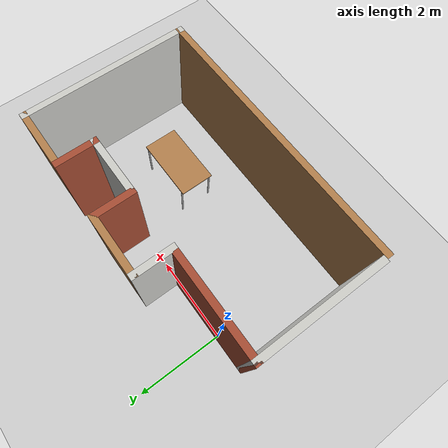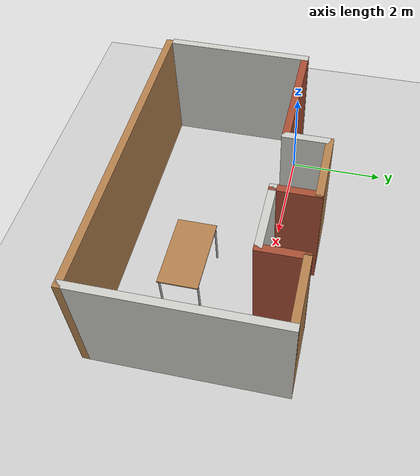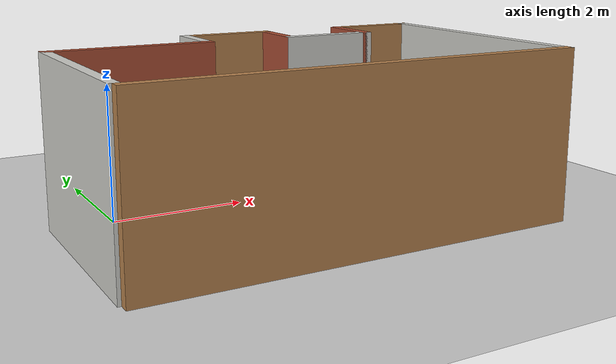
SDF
<sdf version="1.6">
 <world name="default">
  <light name="sun" type="directional">
   <pose>0 0 10 0 -0 0</pose>
   <diffuse>0.8 0.8 0.8 1</diffuse>
   <specular>0.2 0.2 0.2 1</specular>
   <attenuation>
    <range>1000</range>
    <constant>0.9</constant>
    <linear>0.01</linear>
    <quadratic>0.001</quadratic>
   </attenuation>
   <direction>-0.5 0.1 -0.9</direction>
  </light>
  <model name="ground_plane">
   <static>1</static>
   <link name="link">
    <collision name="collision">
     <geometry><plane><normal>0 0 1</normal><size>100 100</size></plane></geometry>
     <surface>
      <contact><collide_bitmask>65535</collide_bitmask></contact>
      <friction><ode><mu>100</mu><mu2>50</mu2></ode></friction>
     </surface>
    </collision>
    <visual name="visual">
     <cast_shadows>0</cast_shadows>
     <geometry><plane><normal>0 0 1</normal><size>100 100</size></plane></geometry>
     <material>
      <script><uri>file://media/materials/scripts/gazebo.material</uri><name>Gazebo/Grey</name></script>
     </material>
    </visual>
   </link>
  </model>
  <gravity>0 0 -9.8</gravity>
  <magnetic_field>6e-06 2.3e-05 -4.2e-05</magnetic_field>
  <atmosphere type="adiabatic"/>
  <physics name="default_physics" default="0" type="ode">
   <max_step_size>0.001</max_step_size>
   <real_time_factor>1</real_time_factor>
   <real_time_update_rate>1000</real_time_update_rate>
  </physics>
  <scene><ambient>0.4 0.4 0.4 1</ambient><background>0.7 0.7 0.7 1</background><shadows>1</shadows></scene>
  <audio><device>default</device></audio>
  <spherical_coordinates>
   <surface_model>EARTH_WGS84</surface_model>
   <latitude_deg>0</latitude_deg>
   <longitude_deg>0</longitude_deg>
   <elevation>0</elevation>
   <heading_deg>0</heading_deg>
  </spherical_coordinates>
  <model name="my_new_world2">
   <pose>2.38333 -1.08113 0 0 -0 0</pose>
   <link name="Wall_0">
    <collision name="Wall_0_Collision">
     <geometry><box><size>3 0.15 2.5</size></box></geometry>
     <pose>0 0 1.25 0 -0 0</pose>
    </collision>
    <visual name="Wall_0_Visual">
     <pose>0 0 1.25 0 -0 0</pose>
     <geometry><box><size>3 0.15 2.5</size></box></geometry>
     <material>
      <script><uri>file://media/materials/scripts/gazebo.material</uri><name>Gazebo/CeilingTiled</name></script>
      <ambient>1 1 1 1</ambient>
     </material>
     <meta><layer>0</layer></meta>
    </visual>
    <pose>-3.2 -0.35 0 0 -0 1.5708</pose>
   </link>
   <link name="Wall_1">
    <collision name="Wall_1_Collision">
     <geometry><box><size>2.5 0.15 2.5</size></box></geometry>
     <pose>0 0 1.25 0 -0 0</pose>
    </collision>
    <visual name="Wall_1_Visual">
     <pose>0 0 1.25 0 -0 0</pose>
     <geometry><box><size>2.5 0.15 2.5</size></box></geometry>
     <material>
      <script><uri>file://media/materials/scripts/gazebo.material</uri><name>Gazebo/Bricks</name></script>
      <ambient>1 1 1 1</ambient>
     </material>
     <meta><layer>0</layer></meta>
    </visual>
    <pose>-2.025 1.075 0 0 -0 0</pose>
   </link>
   <link name="Wall_2">
    <collision name="Wall_2_Collision">
     <geometry><box><size>1 0.15 2.5</size></box></geometry>
     <pose>0 0 1.25 0 -0 0</pose>
    </collision>
    <visual name="Wall_2_Visual">
     <pose>0 0 1.25 0 -0 0</pose>
     <geometry><box><size>1 0.15 2.5</size></box></geometry>
     <material>
      <script><uri>file://media/materials/scripts/gazebo.material</uri><name>Gazebo/CeilingTiled</name></script>
      <ambient>1 1 1 1</ambient>
     </material>
     <meta><layer>0</layer></meta>
    </visual>
    <pose>-0.85 1.5 0 0 -0 1.5708</pose>
   </link>
   <link name="Wall_3">
    <collision name="Wall_3_Collision">
     <geometry><box><size>1.5 0.15 2.5</size></box></geometry>
     <pose>0 0 1.25 0 -0 0</pose>
    </collision>
    <visual name="Wall_3_Visual">
     <pose>0 0 1.25 0 -0 0</pose>
     <geometry><box><size>1.5 0.15 2.5</size></box></geometry>
     <material>
      <script><uri>file://media/materials/scripts/gazebo.material</uri><name>Gazebo/Wood</name></script>
      <ambient>1 1 1 1</ambient>
     </material>
     <meta><layer>0</layer></meta>
    </visual>
    <pose>-0.175 1.925 0 0 -0 0</pose>
   </link>
   <link name="Wall_4">
    <collision name="Wall_4_Collision">
     <geometry><box><size>1 0.15 2.5</size></box></geometry>
     <pose>0 0 1.25 0 -0 0</pose>
    </collision>
    <visual name="Wall_4_Visual">
     <pose>0 0 1.25 0 -0 0</pose>
     <geometry><box><size>1 0.15 2.5</size></box></geometry>
     <material>
      <script><uri>file://media/materials/scripts/gazebo.material</uri><name>Gazebo/Bricks</name></script>
      <ambient>1 1 1 1</ambient>
     </material>
     <meta><layer>0</layer></meta>
    </visual>
    <pose>0.5 1.5 0 0 -0 -1.5708</pose>
   </link>
   <link name="Wall_5">
    <collision name="Wall_5_Collision">
     <geometry><box><size>1.5 0.15 2.5</size></box></geometry>
     <pose>0 0 1.25 0 -0 0</pose>
    </collision>
    <visual name="Wall_5_Visual">
     <pose>0 0 1.25 0 -0 0</pose>
     <geometry><box><size>1.5 0.15 2.5</size></box></geometry>
     <material>
      <script><uri>file://media/materials/scripts/gazebo.material</uri><name>Gazebo/CeilingTiled</name></script>
      <ambient>1 1 1 1</ambient>
     </material>
     <meta><layer>0</layer></meta>
    </visual>
    <pose>1.175 1.075 0 0 -0 0</pose>
   </link>
   <link name="Wall_6">
    <collision name="Wall_6_Collision">
     <geometry><box><size>1 0.15 2.5</size></box></geometry>
     <pose>0 0 1.25 0 -0 0</pose>
    </collision>
    <visual name="Wall_6_Visual">
     <pose>0 0 1.25 0 -0 0</pose>
     <geometry><box><size>1 0.15 2.5</size></box></geometry>
     <material>
      <script><uri>file://media/materials/scripts/gazebo.material</uri><name>Gazebo/Bricks</name></script>
      <ambient>1 1 1 1</ambient>
     </material>
     <meta><layer>0</layer></meta>
    </visual>
    <pose>1.85 1.5 0 0 -0 1.5708</pose>
   </link>
   <link name="Wall_7">
    <collision name="Wall_7_Collision">
     <geometry><box><size>1.5 0.15 2.5</size></box></geometry>
     <pose>0 0 1.25 0 -0 0</pose>
    </collision>
    <visual name="Wall_7_Visual">
     <pose>0 0 1.25 0 -0 0</pose>
     <geometry><box><size>1.5 0.15 2.5</size></box></geometry>
     <material>
      <script><uri>file://media/materials/scripts/gazebo.material</uri><name>Gazebo/Wood</name></script>
      <ambient>1 1 1 1</ambient>
     </material>
     <meta><layer>0</layer></meta>
    </visual>
    <pose>2.525 1.925 0 0 -0 0</pose>
   </link>
   <link name="Wall_8">
    <collision name="Wall_8_Collision">
     <geometry><box><size>4 0.15 2.5</size></box></geometry>
     <pose>0 0 1.25 0 -0 0</pose>
    </collision>
    <visual name="Wall_8_Visual">
     <pose>0 0 1.25 0 -0 0</pose>
     <geometry><box><size>4 0.15 2.5</size></box></geometry>
     <material>
      <script><uri>file://media/materials/scripts/gazebo.material</uri><name>Gazebo/CeilingTiled</name></script>
      <ambient>1 1 1 1</ambient>
     </material>
     <meta><layer>0</layer></meta>
    </visual>
    <pose>3.2 0 0 0 -0 -1.5708</pose>
   </link>
   <link name="Wall_9">
    <collision name="Wall_9_Collision">
     <geometry><box><size>6.5 0.15 2.5</size></box></geometry>
     <pose>0 0 1.25 0 -0 0</pose>
    </collision>
    <visual name="Wall_9_Visual">
     <pose>0 0 1.25 0 -0 0</pose>
     <geometry><box><size>6.5 0.15 2.5</size></box></geometry>
     <material>
      <script><uri>file://media/materials/scripts/gazebo.material</uri><name>Gazebo/Wood</name></script>
      <ambient>1 1 1 1</ambient>
     </material>
     <meta><layer>0</layer></meta>
    </visual>
    <pose>0.025 -1.925 0 0 -0 3.14159</pose>
   </link>
   <static>1</static>
  </model>
  <model name="table">
   <static>1</static>
   <link name="link">
    <collision name="surface">
     <pose>0 0 1 0 -0 0</pose>
     <geometry><box><size>1.5 0.8 0.03</size></box></geometry>
     <surface><friction><ode><mu>0.6</mu><mu2>0.6</mu2></ode></friction></surface>
    </collision>
    <visual name="visual1">
     <pose>0 0 1 0 -0 0</pose>
     <geometry><box><size>1.5 0.8 0.03</size></box></geometry>
     <material>
      <script><uri>file://media/materials/scripts/gazebo.material</uri><name>Gazebo/Wood</name></script>
     </material>
    </visual>
    <collision name="front_left_leg">
     <pose>0.68 0.38 0.5 0 -0 0</pose>
     <geometry><cylinder><radius>0.02</radius><length>1</length></cylinder></geometry>
    </collision>
    <visual name="front_left_leg">
     <pose>0.68 0.38 0.5 0 -0 0</pose>
     <geometry><cylinder><radius>0.02</radius><length>1</length></cylinder></geometry>
     <material>
      <script><uri>file://media/materials/scripts/gazebo.material</uri><name>Gazebo/Grey</name></script>
     </material>
    </visual>
    <collision name="front_right_leg">
     <pose>0.68 -0.38 0.5 0 -0 0</pose>
     <geometry><cylinder><radius>0.02</radius><length>1</length></cylinder></geometry>
    </collision>
    <visual name="front_right_leg">
     <pose>0.68 -0.38 0.5 0 -0 0</pose>
     <geometry><cylinder><radius>0.02</radius><length>1</length></cylinder></geometry>
     <material>
      <script><uri>file://media/materials/scripts/gazebo.material</uri><name>Gazebo/Grey</name></script>
     </material>
    </visual>
    <collision name="back_right_leg">
     <pose>-0.68 -0.38 0.5 0 -0 0</pose>
     <geometry><cylinder><radius>0.02</radius><length>1</length></cylinder></geometry>
    </collision>
    <visual name="back_right_leg">
     <pose>-0.68 -0.38 0.5 0 -0 0</pose>
     <geometry><cylinder><radius>0.02</radius><length>1</length></cylinder></geometry>
     <material>
      <script><uri>file://media/materials/scripts/gazebo.material</uri><name>Gazebo/Grey</name></script>
     </material>
    </visual>
    <collision name="back_left_leg">
     <pose>-0.68 0.38 0.5 0 -0 0</pose>
     <geometry><cylinder><radius>0.02</radius><length>1</length></cylinder></geometry>
    </collision>
    <visual name="back_left_leg">
     <pose>-0.68 0.38 0.5 0 -0 0</pose>
     <geometry><cylinder><radius>0.02</radius><length>1</length></cylinder></geometry>
     <material>
      <script><uri>file://media/materials/scripts/gazebo.material</uri><name>Gazebo/Grey</name></script>
     </material>
    </visual>
   </link>
   <pose>3.60147 -1.51303 0 0 -0 0</pose>
  </model>
 </world>
</sdf>
